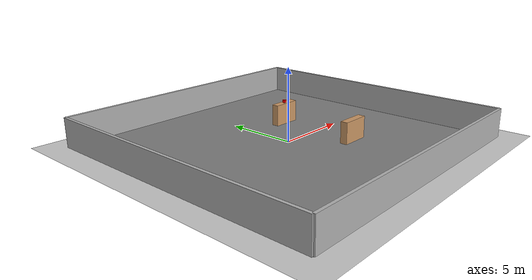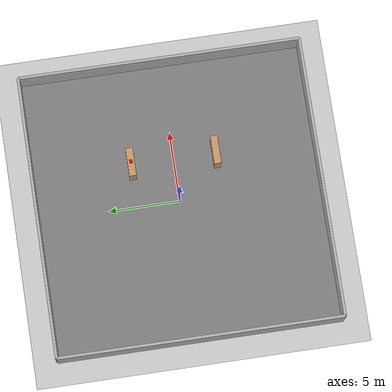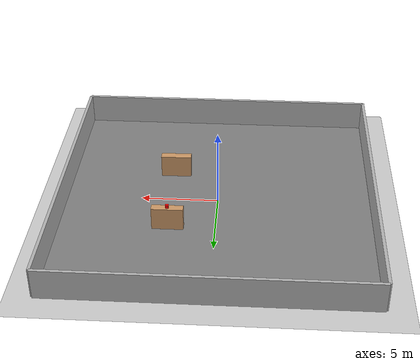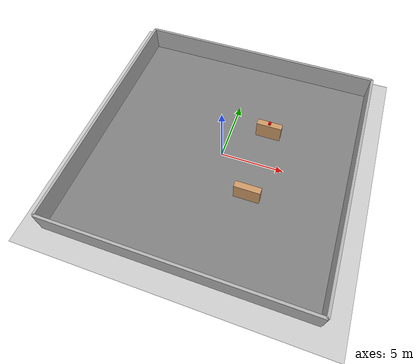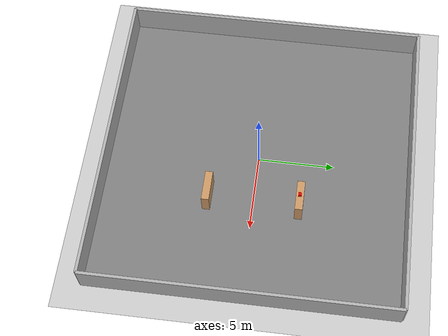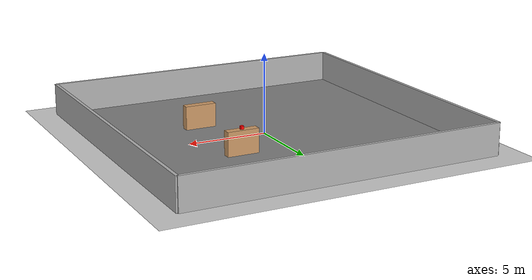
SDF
<?xml version="1.0"?>
<sdf version="1.6">
  <world name="warehouse">

    <!-- Physics -->
    <physics type="ode">
      <real_time_update_rate>1000.0</real_time_update_rate>
      <max_step_size>0.001</max_step_size>
    </physics>

    <!-- Lighting -->
    <include>
      <uri>model://sun</uri>
    </include>

    <!-- Ground Plane -->
    <include>
      <uri>model://ground_plane</uri>
    </include>

    <!-- Warehouse floor (large) -->
    <model name="warehouse_floor">
      <static>true</static>
      <link name="link">
        <visual name="visual">
          <geometry>
            <box>
              <size>20 20 0.1</size>
            </box>
          </geometry>
          <material>
            <ambient>0.5 0.5 0.5 1</ambient>
          </material>
        </visual>
        <collision name="collision">
          <geometry>
            <box>
              <size>20 20 0.1</size>
            </box>
          </geometry>
        </collision>
      </link>
      <pose>0 0 -0.05 0 0 0</pose>
    </model>

    <!-- Wall 1 -->
    <model name="wall1">
      <static>true</static>
      <link name="link">
        <visual name="visual">
          <geometry>
            <box>
              <size>20 0.2 2</size>
            </box>
          </geometry>
          <material>
            <ambient>0.7 0.7 0.7 1</ambient>
          </material>
        </visual>
        <collision name="collision">
          <geometry>
            <box>
              <size>20 0.2 2</size>
            </box>
          </geometry>
        </collision>
      </link>
      <pose>0 10 1 0 0 0</pose>
    </model>

    <!-- Wall 2 -->
    <model name="wall2">
      <static>true</static>
      <link name="link">
        <visual name="visual">
          <geometry>
            <box>
              <size>20 0.2 2</size>
            </box>
          </geometry>
          <material>
            <ambient>0.7 0.7 0.7 1</ambient>
          </material>
        </visual>
        <collision name="collision">
          <geometry>
            <box>
              <size>20 0.2 2</size>
            </box>
          </geometry>
        </collision>
      </link>
      <pose>0 -10 1 0 0 0</pose>
    </model>

    <!-- Wall 3 -->
    <model name="wall3">
      <static>true</static>
      <link name="link">
        <visual name="visual">
          <geometry>
            <box>
              <size>0.2 20 2</size>
            </box>
          </geometry>
          <material>
            <ambient>0.7 0.7 0.7 1</ambient>
          </material>
        </visual>
        <collision name="collision">
          <geometry>
            <box>
              <size>0.2 20 2</size>
            </box>
          </geometry>
        </collision>
      </link>
      <pose>10 0 1 0 0 0</pose>
    </model>

    <!-- Wall 4 -->
    <model name="wall4">
      <static>true</static>
      <link name="link">
        <visual name="visual">
          <geometry>
            <box>
              <size>0.2 20 2</size>
            </box>
          </geometry>
          <material>
            <ambient>0.7 0.7 0.7 1</ambient>
          </material>
        </visual>
        <collision name="collision">
          <geometry>
            <box>
              <size>0.2 20 2</size>
            </box>
          </geometry>
        </collision>
      </link>
      <pose>-10 0 1 0 0 0</pose>
    </model>

    <!-- Shelf 1 (simple obstacle) -->
    <model name="shelf1">
      <static>true</static>
      <link name="link">
        <visual name="visual">
          <geometry>
            <box>
              <size>2 0.5 1.5</size>
            </box>
          </geometry>
          <material>
            <ambient>0.8 0.6 0.4 1</ambient>
          </material>
        </visual>
        <collision name="collision">
          <geometry>
            <box>
              <size>2 0.5 1.5</size>
            </box>
          </geometry>
        </collision>
      </link>
      <pose>3 3 0.75 0 0 0</pose>
    </model>

    <!-- Shelf 2 -->
    <model name="shelf2">
      <static>true</static>
      <link name="link">
        <visual name="visual">
          <geometry>
            <box>
              <size>2 0.5 1.5</size>
            </box>
          </geometry>
          <material>
            <ambient>0.8 0.6 0.4 1</ambient>
          </material>
        </visual>
        <collision name="collision">
          <geometry>
            <box>
              <size>2 0.5 1.5</size>
            </box>
          </geometry>
        </collision>
      </link>
      <pose>3 -3 0.75 0 0 0</pose>
    </model>

    <!-- Box on shelf (what we'll pick up later!) -->
    <model name="target_box">
      <static>false</static>
      <link name="link">
        <visual name="visual">
          <geometry>
            <box>
              <size>0.2 0.2 0.2</size>
            </box>
          </geometry>
          <material>
            <ambient>1 0 0 1</ambient>
          </material>
        </visual>
        <collision name="collision">
          <geometry>
            <box>
              <size>0.2 0.2 0.2</size>
            </box>
          </geometry>
        </collision>
        <inertial>
          <mass>0.5</mass>
          <inertia>
            <ixx>0.0017</ixx>
            <iyy>0.0017</iyy>
            <izz>0.0017</izz>
          </inertia>
        </inertial>
      </link>
      <pose>3 3 1.6 0 0 0</pose>
    </model>

  </world>
</sdf>
